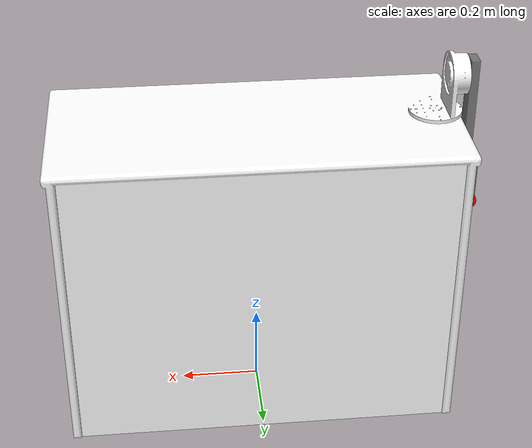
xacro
<?xml version="1.0" encoding="utf-8"?>
<robot xmlns:xacro="http://www.ros.org/wiki/xacro" name="invp">

  <xacro:arg name="is_sim" default="true"/>
  <xacro:arg name="is_ignition" default="true"/>

  <xacro:include filename="$(find daadbot_desc)/urdf/urdf_lab_inv_pendulum/pendulum_gazebo.xacro"/>
  <xacro:include filename="$(find daadbot_desc)/urdf/urdf_lab_inv_pendulum/pendulum_ros2_control.xacro"/>

  <link name="world"/>
  <joint name="world_fixed" type="fixed">
    <parent link="world"/>
    <child link="base_link"/>
    <origin xyz="0 0 0" rpy="0 0 0"/>
  </joint>

  <link
    name="base_link">
    <inertial>
      <origin
        xyz="0.0424276411286307 0.0567910364332896 0.46191289123658"
        rpy="0 0 0" />
      <mass
        value="29.3179302727825" />
      <inertia
        ixx="2.38654267757386"
        ixy="0.129600208089517"
        ixz="0.145842634468341"
        iyy="5.21779752090626"
        iyz="0.121504725996307"
        izz="3.98293176780281" />
    </inertial>
    <visual>
      <origin
        xyz="0 0 0"
        rpy="0 0 0" />
      <geometry>
        <mesh
          filename="package://daadbot_desc/meshes_pend/base_link.STL" />
      </geometry>
      <material
        name="">
        <color
          rgba="1 1 1 1" />
      </material>
    </visual>
    <collision>
      <origin
        xyz="0 0 0"
        rpy="0 0 0" />
      <geometry>
        <mesh
          filename="package://daadbot_desc/meshes_pend/base_link.STL" />
      </geometry>
    </collision>
  </link>
  <link
    name="link1">
    <inertial>
      <origin
        xyz="1.7618E-05 -0.24624 0.026965"
        rpy="0 0 0" />
      <mass
        value="0.6567" />
      <inertia
        ixx="0.0033346"
        ixy="1.4837E-07"
        ixz="-3.285E-08"
        iyy="0.00043616"
        iyz="4.6005E-06"
        izz="0.0037416" />
    </inertial>
    <visual>
      <origin
        xyz="0 0 0"
        rpy="0 0 0" />
      <geometry>
        <mesh
          filename="package://daadbot_desc/meshes_pend/link1.STL" />
      </geometry>
      <material
        name="">
        <color
          rgba="0.45 0.45 0.45 0.81" />
      </material>
    </visual>
    <collision>
      <origin
        xyz="0 0 0"
        rpy="0 0 0" />
      <geometry>
        <mesh
          filename="package://daadbot_desc/meshes_pend/link1.STL" />
      </geometry>
    </collision>
  </link>
  <joint
    name="joint1"
    type="revolute">
    <origin
      xyz="-0.50873 -0.01 0.871"
      rpy="1.5708 0 -1.5708" />
    <parent
      link="base_link" />
    <child
      link="link1" />
    <axis
      xyz="0 0 1" />
    <limit
      lower="-3.14"
      upper="3.14"
      effort="13"
      velocity="16.76" />
      <dynamics damping="0.3" friction="0.0"/>
  </joint>
  <link name="end_effector">
    <visual>
      <origin xyz="0 0 0" rpy="0 0 0" />
      <geometry>
        <sphere radius="0.02"/>
      </geometry>
      <material name="red">
        <color rgba="1 0 0 1" />
      </material>
    </visual>
    <inertial>
      <mass value="0.01" />
      <origin xyz="0 0 0" rpy="0 0 0" />
      <inertia ixx="1e-6" ixy="0" ixz="0" iyy="1e-6" iyz="0" izz="1e-6" />
    </inertial>
  </link>

  <joint name="ee_joint" type="fixed">
    <origin xyz="0.0 -0.3604 0.0377" rpy="0 0 0" />
    <parent link="link1" />
    <child link="end_effector" />
  </joint>
</robot>
